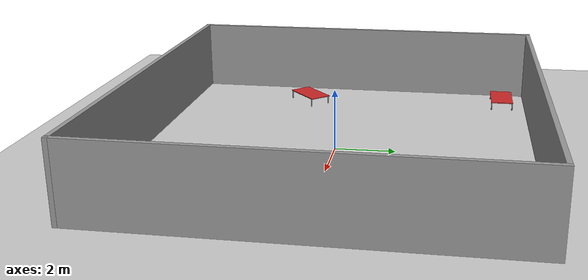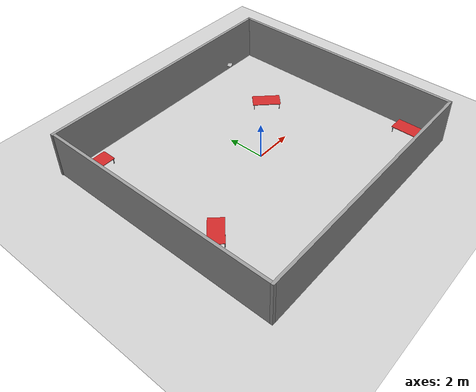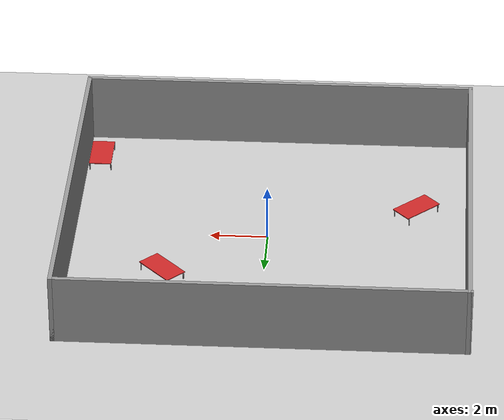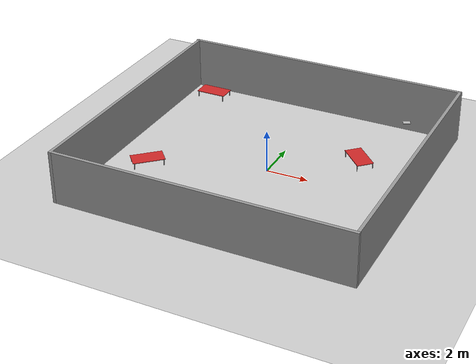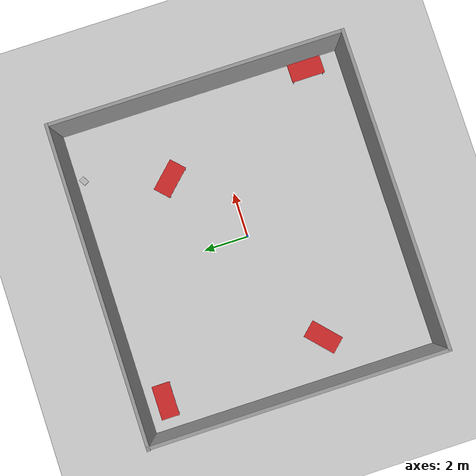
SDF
<sdf version="1.6">
 <world name="Own Room">
  <light name="sun" type="directional">
   <pose>0 0 10 0 -0 0</pose>
   <diffuse>0.8 0.8 0.8 1</diffuse>
   <specular>0.2 0.2 0.2 1</specular>
   <attenuation>
    <range>1000</range>
    <constant>0.9</constant>
    <linear>0.01</linear>
    <quadratic>0.001</quadratic>
   </attenuation>
   <direction>-0.5 0.1 -0.9</direction>
  </light>
  <model name="ground_plane">
   <static>1</static>
   <link name="link">
    <collision name="collision">
     <geometry><plane><normal>0 0 1</normal><size>100 100</size></plane></geometry>
     <surface>
      <contact><collide_bitmask>65535</collide_bitmask></contact>
      <friction><ode><mu>100</mu><mu2>50</mu2></ode></friction>
     </surface>
    </collision>
    <visual name="visual">
     <cast_shadows>0</cast_shadows>
     <geometry><plane><normal>0 0 1</normal><size>100 100</size></plane></geometry>
     <material>
      <script><uri>file://media/materials/scripts/gazebo.material</uri><name>Gazebo/Grey</name></script>
     </material>
    </visual>
   </link>
  </model>
  <gravity>0 0 -9.8</gravity>
  <magnetic_field>6e-06 2.3e-05 -4.2e-05</magnetic_field>
  <atmosphere type="adiabatic"/>
  <physics name="default_physics" default="0" type="ode">
   <max_step_size>0.001</max_step_size>
   <real_time_factor>1</real_time_factor>
   <real_time_update_rate>1000</real_time_update_rate>
  </physics>
  <scene><ambient>0.4 0.4 0.4 1</ambient><background>0.7 0.7 0.7 1</background><shadows>1</shadows></scene>
  <spherical_coordinates>
   <surface_model>EARTH_WGS84</surface_model>
   <latitude_deg>0</latitude_deg>
   <longitude_deg>0</longitude_deg>
   <elevation>0</elevation>
   <heading_deg>0</heading_deg>
  </spherical_coordinates>
  <model name="Room">
   <pose>-0.11793 0.094402 0 0 -0 0</pose>
   <link name="Wall_1">
    <collision name="Wall_1_Collision">
     <geometry><box><size>13 0.15 2.5</size></box></geometry>
     <pose>0 0 1.25 0 -0 0</pose>
    </collision>
    <visual name="Wall_1_Visual">
     <pose>0 0 1.25 0 -0 0</pose>
     <geometry><box><size>13 0.15 2.5</size></box></geometry>
     <material>
      <script><uri>file://media/materials/scripts/gazebo.material</uri><name>Gazebo/Grey</name></script>
      <ambient>0.333333 0.341176 0.32549 1</ambient>
     </material>
     <meta><layer>0</layer></meta>
    </visual>
    <pose>-6.88982 -0 0 0 -0 1.5708</pose>
   </link>
   <link name="Wall_2">
    <collision name="Wall_2_Collision">
     <geometry><box><size>14 0.15 2.5</size></box></geometry>
     <pose>0 0 1.25 0 -0 0</pose>
    </collision>
    <visual name="Wall_2_Visual">
     <pose>0 0 1.25 0 -0 0</pose>
     <geometry><box><size>14 0.15 2.5</size></box></geometry>
     <material>
      <script><uri>file://media/materials/scripts/gazebo.material</uri><name>Gazebo/Grey</name></script>
      <ambient>0.333333 0.341176 0.32549 1</ambient>
     </material>
     <meta><layer>0</layer></meta>
    </visual>
    <pose>-0 6.425 0 0 -0 0</pose>
   </link>
   <link name="Wall_4">
    <collision name="Wall_4_Collision">
     <geometry><box><size>13 0.15 2.5</size></box></geometry>
     <pose>0 0 1.25 0 -0 0</pose>
    </collision>
    <visual name="Wall_4_Visual">
     <pose>0 0 1.25 0 -0 0</pose>
     <geometry><box><size>13 0.15 2.5</size></box></geometry>
     <material>
      <script><uri>file://media/materials/scripts/gazebo.material</uri><name>Gazebo/Grey</name></script>
      <ambient>0.333333 0.341176 0.32549 1</ambient>
     </material>
     <meta><layer>0</layer></meta>
    </visual>
    <pose>6.925 -0 0 0 -0 -1.5708</pose>
   </link>
   <link name="Wall_5">
    <collision name="Wall_5_Collision">
     <geometry><box><size>13.9648 0.15 2.5</size></box></geometry>
     <pose>0 0 1.25 0 -0 0</pose>
    </collision>
    <visual name="Wall_5_Visual">
     <pose>0 0 1.25 0 -0 0</pose>
     <geometry><box><size>13.9648 0.15 2.5</size></box></geometry>
     <material>
      <script><uri>file://media/materials/scripts/gazebo.material</uri><name>Gazebo/Grey</name></script>
      <ambient>0.333333 0.341176 0.32549 1</ambient>
     </material>
     <meta><layer>0</layer></meta>
    </visual>
    <pose>0.017589 -6.425 0 0 -0 3.14159</pose>
   </link>
   <static>1</static>
  </model>
  <model name="table">
   <link name="link">
    <inertial>
     <mass>1</mass>
     <inertia><ixx>1</ixx><ixy>0</ixy><ixz>0</ixz><iyy>1</iyy><iyz>0</iyz><izz>1</izz></inertia>
    </inertial>
    <visual name="front_right_leg">
     <pose>0.68 -0.38 0.15 0 -0 0</pose>
     <geometry><cylinder><radius>0.02</radius><length>0.3</length></cylinder></geometry>
     <material>
      <script><uri>file://media/materials/scripts/gazebo.material</uri><name>Gazebo/Grey</name></script>
      <shader type="pixel"><normal_map>__default__</normal_map></shader>
      <ambient>0.3 0.3 0.3 1</ambient>
      <diffuse>0.7 0.7 0.7 1</diffuse>
      <specular>0.01 0.01 0.01 1</specular>
      <emissive>0 0 0 1</emissive>
     </material>
    </visual>
    <visual name="back_left_leg">
     <pose>-0.68 0.38 0.15 0 -0 0</pose>
     <geometry><cylinder><radius>0.02</radius><length>0.3</length></cylinder></geometry>
     <material>
      <script><uri>file://media/materials/scripts/gazebo.material</uri><name>Gazebo/Grey</name></script>
      <shader type="pixel"><normal_map>__default__</normal_map></shader>
      <ambient>0.3 0.3 0.3 1</ambient>
      <diffuse>0.7 0.7 0.7 1</diffuse>
      <specular>0.01 0.01 0.01 1</specular>
      <emissive>0 0 0 1</emissive>
     </material>
    </visual>
    <visual name="front_left_leg">
     <pose>0.68 0.38 0.15 0 -0 0</pose>
     <geometry><cylinder><radius>0.02</radius><length>0.3</length></cylinder></geometry>
     <material>
      <script><uri>file://media/materials/scripts/gazebo.material</uri><name>Gazebo/Grey</name></script>
      <shader type="pixel"><normal_map>__default__</normal_map></shader>
      <ambient>0.3 0.3 0.3 1</ambient>
      <diffuse>0.7 0.7 0.7 1</diffuse>
      <specular>0.01 0.01 0.01 1</specular>
      <emissive>0 0 0 1</emissive>
     </material>
    </visual>
    <visual name="visual1">
     <pose>0 0 0.3 0 -0 0</pose>
     <geometry><box><size>1.5 0.8 0.03</size></box></geometry>
     <material>
      <script><uri>file://media/materials/scripts/gazebo.material</uri><name>Gazebo/Red</name></script>
      <shader type="vertex"><normal_map>__default__</normal_map></shader>
      <ambient>1 0 0 1</ambient>
      <diffuse>1 0 0 1</diffuse>
      <specular>0.2 0 0 1</specular>
      <emissive>0 0 0 1</emissive>
      <lighting>1</lighting>
     </material>
    </visual>
    <visual name="back_right_leg">
     <pose>-0.68 -0.38 0.15 0 -0 0</pose>
     <geometry><cylinder><radius>0.02</radius><length>0.3</length></cylinder></geometry>
     <material>
      <script><uri>file://media/materials/scripts/gazebo.material</uri><name>Gazebo/Grey</name></script>
      <shader type="pixel"><normal_map>__default__</normal_map></shader>
      <ambient>0.3 0.3 0.3 1</ambient>
      <diffuse>0.7 0.7 0.7 1</diffuse>
      <specular>0.01 0.01 0.01 1</specular>
      <emissive>0 0 0 1</emissive>
     </material>
    </visual>
    <collision name="front_left_leg">
     <pose>0.68 0.38 0.15 0 -0 0</pose>
     <geometry><cylinder><radius>0.02</radius><length>0.3</length></cylinder></geometry>
     <surface>
      <friction>
       <ode><mu>1</mu><mu2>1</mu2><fdir1>0 0 0</fdir1><slip1>0</slip1><slip2>0</slip2></ode>
       <torsional>
        <coefficient>1</coefficient>
        <patch_radius>0</patch_radius>
        <surface_radius>0</surface_radius>
        <use_patch_radius>1</use_patch_radius>
        <ode><slip>0</slip></ode>
       </torsional>
      </friction>
      <bounce><restitution_coefficient>0</restitution_coefficient><threshold>1e+06</threshold></bounce>
      <contact>
       <collide_without_contact>0</collide_without_contact>
       <collide_without_contact_bitmask>1</collide_without_contact_bitmask>
       <collide_bitmask>1</collide_bitmask>
       <ode>
        <soft_cfm>0</soft_cfm>
        <soft_erp>0.2</soft_erp>
        <kp>1e+13</kp>
        <kd>1</kd>
        <max_vel>0.01</max_vel>
        <min_depth>0</min_depth>
       </ode>
       <bullet>
        <split_impulse>1</split_impulse>
        <split_impulse_penetration_threshold>-0.01</split_impulse_penetration_threshold>
        <soft_cfm>0</soft_cfm>
        <soft_erp>0.2</soft_erp>
        <kp>1e+13</kp>
        <kd>1</kd>
       </bullet>
      </contact>
     </surface>
    </collision>
    <collision name="back_right_leg">
     <pose>-0.68 -0.38 0.15 0 -0 0</pose>
     <geometry><cylinder><radius>0.02</radius><length>0.3</length></cylinder></geometry>
     <surface>
      <friction>
       <ode><mu>1</mu><mu2>1</mu2><fdir1>0 0 0</fdir1><slip1>0</slip1><slip2>0</slip2></ode>
       <torsional>
        <coefficient>1</coefficient>
        <patch_radius>0</patch_radius>
        <surface_radius>0</surface_radius>
        <use_patch_radius>1</use_patch_radius>
        <ode><slip>0</slip></ode>
       </torsional>
      </friction>
      <bounce><restitution_coefficient>0</restitution_coefficient><threshold>1e+06</threshold></bounce>
      <contact>
       <collide_without_contact>0</collide_without_contact>
       <collide_without_contact_bitmask>1</collide_without_contact_bitmask>
       <collide_bitmask>1</collide_bitmask>
       <ode>
        <soft_cfm>0</soft_cfm>
        <soft_erp>0.2</soft_erp>
        <kp>1e+13</kp>
        <kd>1</kd>
        <max_vel>0.01</max_vel>
        <min_depth>0</min_depth>
       </ode>
       <bullet>
        <split_impulse>1</split_impulse>
        <split_impulse_penetration_threshold>-0.01</split_impulse_penetration_threshold>
        <soft_cfm>0</soft_cfm>
        <soft_erp>0.2</soft_erp>
        <kp>1e+13</kp>
        <kd>1</kd>
       </bullet>
      </contact>
     </surface>
    </collision>
    <collision name="back_left_leg">
     <pose>-0.68 0.38 0.15 0 -0 0</pose>
     <geometry><cylinder><radius>0.02</radius><length>0.3</length></cylinder></geometry>
     <surface>
      <friction>
       <ode><mu>1</mu><mu2>1</mu2><fdir1>0 0 0</fdir1><slip1>0</slip1><slip2>0</slip2></ode>
       <torsional>
        <coefficient>1</coefficient>
        <patch_radius>0</patch_radius>
        <surface_radius>0</surface_radius>
        <use_patch_radius>1</use_patch_radius>
        <ode><slip>0</slip></ode>
       </torsional>
      </friction>
      <bounce><restitution_coefficient>0</restitution_coefficient><threshold>1e+06</threshold></bounce>
      <contact>
       <collide_without_contact>0</collide_without_contact>
       <collide_without_contact_bitmask>1</collide_without_contact_bitmask>
       <collide_bitmask>1</collide_bitmask>
       <ode>
        <soft_cfm>0</soft_cfm>
        <soft_erp>0.2</soft_erp>
        <kp>1e+13</kp>
        <kd>1</kd>
        <max_vel>0.01</max_vel>
        <min_depth>0</min_depth>
       </ode>
       <bullet>
        <split_impulse>1</split_impulse>
        <split_impulse_penetration_threshold>-0.01</split_impulse_penetration_threshold>
        <soft_cfm>0</soft_cfm>
        <soft_erp>0.2</soft_erp>
        <kp>1e+13</kp>
        <kd>1</kd>
       </bullet>
      </contact>
     </surface>
    </collision>
    <collision name="surface">
     <pose>0 0 0.3 0 -0 0</pose>
     <geometry><box><size>1.5 0.8 0.03</size></box></geometry>
     <surface>
      <friction>
       <ode><mu>0.6</mu><mu2>0.6</mu2><fdir1>0 0 0</fdir1><slip1>0</slip1><slip2>0</slip2></ode>
       <torsional>
        <coefficient>1</coefficient>
        <patch_radius>0</patch_radius>
        <surface_radius>0</surface_radius>
        <use_patch_radius>1</use_patch_radius>
        <ode><slip>0</slip></ode>
       </torsional>
      </friction>
      <bounce><restitution_coefficient>0</restitution_coefficient><threshold>1e+06</threshold></bounce>
      <contact>
       <collide_without_contact>0</collide_without_contact>
       <collide_without_contact_bitmask>1</collide_without_contact_bitmask>
       <collide_bitmask>1</collide_bitmask>
       <ode>
        <soft_cfm>0</soft_cfm>
        <soft_erp>0.2</soft_erp>
        <kp>1e+13</kp>
        <kd>1</kd>
        <max_vel>0.01</max_vel>
        <min_depth>0</min_depth>
       </ode>
       <bullet>
        <split_impulse>1</split_impulse>
        <split_impulse_penetration_threshold>-0.01</split_impulse_penetration_threshold>
        <soft_cfm>0</soft_cfm>
        <soft_erp>0.2</soft_erp>
        <kp>1e+13</kp>
        <kd>1</kd>
       </bullet>
      </contact>
     </surface>
    </collision>
    <collision name="front_right_leg">
     <pose>0.68 -0.38 0.15 0 -0 0</pose>
     <geometry><cylinder><radius>0.02</radius><length>0.3</length></cylinder></geometry>
     <surface>
      <friction>
       <ode><mu>1</mu><mu2>1</mu2><fdir1>0 0 0</fdir1><slip1>0</slip1><slip2>0</slip2></ode>
       <torsional>
        <coefficient>1</coefficient>
        <patch_radius>0</patch_radius>
        <surface_radius>0</surface_radius>
        <use_patch_radius>1</use_patch_radius>
        <ode><slip>0</slip></ode>
       </torsional>
      </friction>
      <bounce><restitution_coefficient>0</restitution_coefficient><threshold>1e+06</threshold></bounce>
      <contact>
       <collide_without_contact>0</collide_without_contact>
       <collide_without_contact_bitmask>1</collide_without_contact_bitmask>
       <collide_bitmask>1</collide_bitmask>
       <ode>
        <soft_cfm>0</soft_cfm>
        <soft_erp>0.2</soft_erp>
        <kp>1e+13</kp>
        <kd>1</kd>
        <max_vel>0.01</max_vel>
        <min_depth>0</min_depth>
       </ode>
       <bullet>
        <split_impulse>1</split_impulse>
        <split_impulse_penetration_threshold>-0.01</split_impulse_penetration_threshold>
        <soft_cfm>0</soft_cfm>
        <soft_erp>0.2</soft_erp>
        <kp>1e+13</kp>
        <kd>1</kd>
       </bullet>
      </contact>
     </surface>
    </collision>
   </link>
   <static>1</static>
   <pose>-5.68589 5.59801 0 0 -0 0</pose>
  </model>
  <model name="table_0">
   <link name="link">
    <inertial>
     <mass>1</mass>
     <inertia><ixx>1</ixx><ixy>0</ixy><ixz>0</ixz><iyy>1</iyy><iyz>0</iyz><izz>1</izz></inertia>
    </inertial>
    <visual name="front_right_leg">
     <pose>0.68 -0.38 0.15 0 -0 0</pose>
     <geometry><cylinder><radius>0.02</radius><length>0.3</length></cylinder></geometry>
     <material>
      <script><uri>file://media/materials/scripts/gazebo.material</uri><name>Gazebo/Grey</name></script>
      <shader type="pixel"><normal_map>__default__</normal_map></shader>
      <ambient>0.3 0.3 0.3 1</ambient>
      <diffuse>0.7 0.7 0.7 1</diffuse>
      <specular>0.01 0.01 0.01 1</specular>
      <emissive>0 0 0 1</emissive>
     </material>
    </visual>
    <visual name="back_left_leg">
     <pose>-0.68 0.38 0.15 0 -0 0</pose>
     <geometry><cylinder><radius>0.02</radius><length>0.3</length></cylinder></geometry>
     <material>
      <script><uri>file://media/materials/scripts/gazebo.material</uri><name>Gazebo/Grey</name></script>
      <shader type="pixel"><normal_map>__default__</normal_map></shader>
      <ambient>0.3 0.3 0.3 1</ambient>
      <diffuse>0.7 0.7 0.7 1</diffuse>
      <specular>0.01 0.01 0.01 1</specular>
      <emissive>0 0 0 1</emissive>
     </material>
    </visual>
    <visual name="front_left_leg">
     <pose>0.68 0.38 0.15 0 -0 0</pose>
     <geometry><cylinder><radius>0.02</radius><length>0.3</length></cylinder></geometry>
     <material>
      <script><uri>file://media/materials/scripts/gazebo.material</uri><name>Gazebo/Grey</name></script>
      <shader type="pixel"><normal_map>__default__</normal_map></shader>
      <ambient>0.3 0.3 0.3 1</ambient>
      <diffuse>0.7 0.7 0.7 1</diffuse>
      <specular>0.01 0.01 0.01 1</specular>
      <emissive>0 0 0 1</emissive>
     </material>
    </visual>
    <visual name="visual1">
     <pose>0 0 0.3 0 -0 0</pose>
     <geometry><box><size>1.5 0.8 0.03</size></box></geometry>
     <material>
      <script><uri>file://media/materials/scripts/gazebo.material</uri><name>Gazebo/Red</name></script>
      <shader type="vertex"><normal_map>__default__</normal_map></shader>
      <ambient>1 0 0 1</ambient>
      <diffuse>1 0 0 1</diffuse>
      <specular>0.2 0 0 1</specular>
      <emissive>0 0 0 1</emissive>
      <lighting>1</lighting>
     </material>
    </visual>
    <visual name="back_right_leg">
     <pose>-0.68 -0.38 0.15 0 -0 0</pose>
     <geometry><cylinder><radius>0.02</radius><length>0.3</length></cylinder></geometry>
     <material>
      <script><uri>file://media/materials/scripts/gazebo.material</uri><name>Gazebo/Grey</name></script>
      <shader type="pixel"><normal_map>__default__</normal_map></shader>
      <ambient>0.3 0.3 0.3 1</ambient>
      <diffuse>0.7 0.7 0.7 1</diffuse>
      <specular>0.01 0.01 0.01 1</specular>
      <emissive>0 0 0 1</emissive>
     </material>
    </visual>
    <collision name="front_left_leg">
     <pose>0.68 0.38 0.15 0 -0 0</pose>
     <geometry><cylinder><radius>0.02</radius><length>0.3</length></cylinder></geometry>
     <surface>
      <friction>
       <ode><mu>1</mu><mu2>1</mu2><fdir1>0 0 0</fdir1><slip1>0</slip1><slip2>0</slip2></ode>
       <torsional>
        <coefficient>1</coefficient>
        <patch_radius>0</patch_radius>
        <surface_radius>0</surface_radius>
        <use_patch_radius>1</use_patch_radius>
        <ode><slip>0</slip></ode>
       </torsional>
      </friction>
      <bounce><restitution_coefficient>0</restitution_coefficient><threshold>1e+06</threshold></bounce>
      <contact>
       <collide_without_contact>0</collide_without_contact>
       <collide_without_contact_bitmask>1</collide_without_contact_bitmask>
       <collide_bitmask>1</collide_bitmask>
       <ode>
        <soft_cfm>0</soft_cfm>
        <soft_erp>0.2</soft_erp>
        <kp>1e+13</kp>
        <kd>1</kd>
        <max_vel>0.01</max_vel>
        <min_depth>0</min_depth>
       </ode>
       <bullet>
        <split_impulse>1</split_impulse>
        <split_impulse_penetration_threshold>-0.01</split_impulse_penetration_threshold>
        <soft_cfm>0</soft_cfm>
        <soft_erp>0.2</soft_erp>
        <kp>1e+13</kp>
        <kd>1</kd>
       </bullet>
      </contact>
     </surface>
    </collision>
    <collision name="back_right_leg">
     <pose>-0.68 -0.38 0.15 0 -0 0</pose>
     <geometry><cylinder><radius>0.02</radius><length>0.3</length></cylinder></geometry>
     <surface>
      <friction>
       <ode><mu>1</mu><mu2>1</mu2><fdir1>0 0 0</fdir1><slip1>0</slip1><slip2>0</slip2></ode>
       <torsional>
        <coefficient>1</coefficient>
        <patch_radius>0</patch_radius>
        <surface_radius>0</surface_radius>
        <use_patch_radius>1</use_patch_radius>
        <ode><slip>0</slip></ode>
       </torsional>
      </friction>
      <bounce><restitution_coefficient>0</restitution_coefficient><threshold>1e+06</threshold></bounce>
      <contact>
       <collide_without_contact>0</collide_without_contact>
       <collide_without_contact_bitmask>1</collide_without_contact_bitmask>
       <collide_bitmask>1</collide_bitmask>
       <ode>
        <soft_cfm>0</soft_cfm>
        <soft_erp>0.2</soft_erp>
        <kp>1e+13</kp>
        <kd>1</kd>
        <max_vel>0.01</max_vel>
        <min_depth>0</min_depth>
       </ode>
       <bullet>
        <split_impulse>1</split_impulse>
        <split_impulse_penetration_threshold>-0.01</split_impulse_penetration_threshold>
        <soft_cfm>0</soft_cfm>
        <soft_erp>0.2</soft_erp>
        <kp>1e+13</kp>
        <kd>1</kd>
       </bullet>
      </contact>
     </surface>
    </collision>
    <collision name="back_left_leg">
     <pose>-0.68 0.38 0.15 0 -0 0</pose>
     <geometry><cylinder><radius>0.02</radius><length>0.3</length></cylinder></geometry>
     <surface>
      <friction>
       <ode><mu>1</mu><mu2>1</mu2><fdir1>0 0 0</fdir1><slip1>0</slip1><slip2>0</slip2></ode>
       <torsional>
        <coefficient>1</coefficient>
        <patch_radius>0</patch_radius>
        <surface_radius>0</surface_radius>
        <use_patch_radius>1</use_patch_radius>
        <ode><slip>0</slip></ode>
       </torsional>
      </friction>
      <bounce><restitution_coefficient>0</restitution_coefficient><threshold>1e+06</threshold></bounce>
      <contact>
       <collide_without_contact>0</collide_without_contact>
       <collide_without_contact_bitmask>1</collide_without_contact_bitmask>
       <collide_bitmask>1</collide_bitmask>
       <ode>
        <soft_cfm>0</soft_cfm>
        <soft_erp>0.2</soft_erp>
        <kp>1e+13</kp>
        <kd>1</kd>
        <max_vel>0.01</max_vel>
        <min_depth>0</min_depth>
       </ode>
       <bullet>
        <split_impulse>1</split_impulse>
        <split_impulse_penetration_threshold>-0.01</split_impulse_penetration_threshold>
        <soft_cfm>0</soft_cfm>
        <soft_erp>0.2</soft_erp>
        <kp>1e+13</kp>
        <kd>1</kd>
       </bullet>
      </contact>
     </surface>
    </collision>
    <collision name="surface">
     <pose>0 0 0.3 0 -0 0</pose>
     <geometry><box><size>1.5 0.8 0.03</size></box></geometry>
     <surface>
      <friction>
       <ode><mu>0.6</mu><mu2>0.6</mu2><fdir1>0 0 0</fdir1><slip1>0</slip1><slip2>0</slip2></ode>
       <torsional>
        <coefficient>1</coefficient>
        <patch_radius>0</patch_radius>
        <surface_radius>0</surface_radius>
        <use_patch_radius>1</use_patch_radius>
        <ode><slip>0</slip></ode>
       </torsional>
      </friction>
      <bounce><restitution_coefficient>0</restitution_coefficient><threshold>1e+06</threshold></bounce>
      <contact>
       <collide_without_contact>0</collide_without_contact>
       <collide_without_contact_bitmask>1</collide_without_contact_bitmask>
       <collide_bitmask>1</collide_bitmask>
       <ode>
        <soft_cfm>0</soft_cfm>
        <soft_erp>0.2</soft_erp>
        <kp>1e+13</kp>
        <kd>1</kd>
        <max_vel>0.01</max_vel>
        <min_depth>0</min_depth>
       </ode>
       <bullet>
        <split_impulse>1</split_impulse>
        <split_impulse_penetration_threshold>-0.01</split_impulse_penetration_threshold>
        <soft_cfm>0</soft_cfm>
        <soft_erp>0.2</soft_erp>
        <kp>1e+13</kp>
        <kd>1</kd>
       </bullet>
      </contact>
     </surface>
    </collision>
    <collision name="front_right_leg">
     <pose>0.68 -0.38 0.15 0 -0 0</pose>
     <geometry><cylinder><radius>0.02</radius><length>0.3</length></cylinder></geometry>
     <surface>
      <friction>
       <ode><mu>1</mu><mu2>1</mu2><fdir1>0 0 0</fdir1><slip1>0</slip1><slip2>0</slip2></ode>
       <torsional>
        <coefficient>1</coefficient>
        <patch_radius>0</patch_radius>
        <surface_radius>0</surface_radius>
        <use_patch_radius>1</use_patch_radius>
        <ode><slip>0</slip></ode>
       </torsional>
      </friction>
      <bounce><restitution_coefficient>0</restitution_coefficient><threshold>1e+06</threshold></bounce>
      <contact>
       <collide_without_contact>0</collide_without_contact>
       <collide_without_contact_bitmask>1</collide_without_contact_bitmask>
       <collide_bitmask>1</collide_bitmask>
       <ode>
        <soft_cfm>0</soft_cfm>
        <soft_erp>0.2</soft_erp>
        <kp>1e+13</kp>
        <kd>1</kd>
        <max_vel>0.01</max_vel>
        <min_depth>0</min_depth>
       </ode>
       <bullet>
        <split_impulse>1</split_impulse>
        <split_impulse_penetration_threshold>-0.01</split_impulse_penetration_threshold>
        <soft_cfm>0</soft_cfm>
        <soft_erp>0.2</soft_erp>
        <kp>1e+13</kp>
        <kd>1</kd>
       </bullet>
      </contact>
     </surface>
    </collision>
   </link>
   <static>1</static>
   <pose>6.26711 -4.72705 0 0 0 -1.56938</pose>
  </model>
  <model name="table_1">
   <link name="link">
    <inertial>
     <mass>1</mass>
     <inertia><ixx>1</ixx><ixy>0</ixy><ixz>0</ixz><iyy>1</iyy><iyz>0</iyz><izz>1</izz></inertia>
    </inertial>
    <visual name="front_right_leg">
     <pose>0.68 -0.38 0.15 0 -0 0</pose>
     <geometry><cylinder><radius>0.02</radius><length>0.3</length></cylinder></geometry>
     <material>
      <script><uri>file://media/materials/scripts/gazebo.material</uri><name>Gazebo/Grey</name></script>
      <shader type="pixel"><normal_map>__default__</normal_map></shader>
      <ambient>0.3 0.3 0.3 1</ambient>
      <diffuse>0.7 0.7 0.7 1</diffuse>
      <specular>0.01 0.01 0.01 1</specular>
      <emissive>0 0 0 1</emissive>
     </material>
    </visual>
    <visual name="back_left_leg">
     <pose>-0.68 0.38 0.15 0 -0 0</pose>
     <geometry><cylinder><radius>0.02</radius><length>0.3</length></cylinder></geometry>
     <material>
      <script><uri>file://media/materials/scripts/gazebo.material</uri><name>Gazebo/Grey</name></script>
      <shader type="pixel"><normal_map>__default__</normal_map></shader>
      <ambient>0.3 0.3 0.3 1</ambient>
      <diffuse>0.7 0.7 0.7 1</diffuse>
      <specular>0.01 0.01 0.01 1</specular>
      <emissive>0 0 0 1</emissive>
     </material>
    </visual>
    <visual name="front_left_leg">
     <pose>0.68 0.38 0.15 0 -0 0</pose>
     <geometry><cylinder><radius>0.02</radius><length>0.3</length></cylinder></geometry>
     <material>
      <script><uri>file://media/materials/scripts/gazebo.material</uri><name>Gazebo/Grey</name></script>
      <shader type="pixel"><normal_map>__default__</normal_map></shader>
      <ambient>0.3 0.3 0.3 1</ambient>
      <diffuse>0.7 0.7 0.7 1</diffuse>
      <specular>0.01 0.01 0.01 1</specular>
      <emissive>0 0 0 1</emissive>
     </material>
    </visual>
    <visual name="visual1">
     <pose>0 0 0.3 0 -0 0</pose>
     <geometry><box><size>1.5 0.8 0.03</size></box></geometry>
     <material>
      <script><uri>file://media/materials/scripts/gazebo.material</uri><name>Gazebo/Red</name></script>
      <shader type="vertex"><normal_map>__default__</normal_map></shader>
      <ambient>1 0 0 1</ambient>
      <diffuse>1 0 0 1</diffuse>
      <specular>0.2 0 0 1</specular>
      <emissive>0 0 0 1</emissive>
      <lighting>1</lighting>
     </material>
    </visual>
    <visual name="back_right_leg">
     <pose>-0.68 -0.38 0.15 0 -0 0</pose>
     <geometry><cylinder><radius>0.02</radius><length>0.3</length></cylinder></geometry>
     <material>
      <script><uri>file://media/materials/scripts/gazebo.material</uri><name>Gazebo/Grey</name></script>
      <shader type="pixel"><normal_map>__default__</normal_map></shader>
      <ambient>0.3 0.3 0.3 1</ambient>
      <diffuse>0.7 0.7 0.7 1</diffuse>
      <specular>0.01 0.01 0.01 1</specular>
      <emissive>0 0 0 1</emissive>
     </material>
    </visual>
    <collision name="front_left_leg">
     <pose>0.68 0.38 0.15 0 -0 0</pose>
     <geometry><cylinder><radius>0.02</radius><length>0.3</length></cylinder></geometry>
     <surface>
      <friction>
       <ode><mu>1</mu><mu2>1</mu2><fdir1>0 0 0</fdir1><slip1>0</slip1><slip2>0</slip2></ode>
       <torsional>
        <coefficient>1</coefficient>
        <patch_radius>0</patch_radius>
        <surface_radius>0</surface_radius>
        <use_patch_radius>1</use_patch_radius>
        <ode><slip>0</slip></ode>
       </torsional>
      </friction>
      <bounce><restitution_coefficient>0</restitution_coefficient><threshold>1e+06</threshold></bounce>
      <contact>
       <collide_without_contact>0</collide_without_contact>
       <collide_without_contact_bitmask>1</collide_without_contact_bitmask>
       <collide_bitmask>1</collide_bitmask>
       <ode>
        <soft_cfm>0</soft_cfm>
        <soft_erp>0.2</soft_erp>
        <kp>1e+13</kp>
        <kd>1</kd>
        <max_vel>0.01</max_vel>
        <min_depth>0</min_depth>
       </ode>
       <bullet>
        <split_impulse>1</split_impulse>
        <split_impulse_penetration_threshold>-0.01</split_impulse_penetration_threshold>
        <soft_cfm>0</soft_cfm>
        <soft_erp>0.2</soft_erp>
        <kp>1e+13</kp>
        <kd>1</kd>
       </bullet>
      </contact>
     </surface>
    </collision>
    <collision name="back_right_leg">
     <pose>-0.68 -0.38 0.15 0 -0 0</pose>
     <geometry><cylinder><radius>0.02</radius><length>0.3</length></cylinder></geometry>
     <surface>
      <friction>
       <ode><mu>1</mu><mu2>1</mu2><fdir1>0 0 0</fdir1><slip1>0</slip1><slip2>0</slip2></ode>
       <torsional>
        <coefficient>1</coefficient>
        <patch_radius>0</patch_radius>
        <surface_radius>0</surface_radius>
        <use_patch_radius>1</use_patch_radius>
        <ode><slip>0</slip></ode>
       </torsional>
      </friction>
      <bounce><restitution_coefficient>0</restitution_coefficient><threshold>1e+06</threshold></bounce>
      <contact>
       <collide_without_contact>0</collide_without_contact>
       <collide_without_contact_bitmask>1</collide_without_contact_bitmask>
       <collide_bitmask>1</collide_bitmask>
       <ode>
        <soft_cfm>0</soft_cfm>
        <soft_erp>0.2</soft_erp>
        <kp>1e+13</kp>
        <kd>1</kd>
        <max_vel>0.01</max_vel>
        <min_depth>0</min_depth>
       </ode>
       <bullet>
        <split_impulse>1</split_impulse>
        <split_impulse_penetration_threshold>-0.01</split_impulse_penetration_threshold>
        <soft_cfm>0</soft_cfm>
        <soft_erp>0.2</soft_erp>
        <kp>1e+13</kp>
        <kd>1</kd>
       </bullet>
      </contact>
     </surface>
    </collision>
    <collision name="back_left_leg">
     <pose>-0.68 0.38 0.15 0 -0 0</pose>
     <geometry><cylinder><radius>0.02</radius><length>0.3</length></cylinder></geometry>
     <surface>
      <friction>
       <ode><mu>1</mu><mu2>1</mu2><fdir1>0 0 0</fdir1><slip1>0</slip1><slip2>0</slip2></ode>
       <torsional>
        <coefficient>1</coefficient>
        <patch_radius>0</patch_radius>
        <surface_radius>0</surface_radius>
        <use_patch_radius>1</use_patch_radius>
        <ode><slip>0</slip></ode>
       </torsional>
      </friction>
      <bounce><restitution_coefficient>0</restitution_coefficient><threshold>1e+06</threshold></bounce>
      <contact>
       <collide_without_contact>0</collide_without_contact>
       <collide_without_contact_bitmask>1</collide_without_contact_bitmask>
       <collide_bitmask>1</collide_bitmask>
       <ode>
        <soft_cfm>0</soft_cfm>
        <soft_erp>0.2</soft_erp>
        <kp>1e+13</kp>
        <kd>1</kd>
        <max_vel>0.01</max_vel>
        <min_depth>0</min_depth>
       </ode>
       <bullet>
        <split_impulse>1</split_impulse>
        <split_impulse_penetration_threshold>-0.01</split_impulse_penetration_threshold>
        <soft_cfm>0</soft_cfm>
        <soft_erp>0.2</soft_erp>
        <kp>1e+13</kp>
        <kd>1</kd>
       </bullet>
      </contact>
     </surface>
    </collision>
    <collision name="surface">
     <pose>0 0 0.3 0 -0 0</pose>
     <geometry><box><size>1.5 0.8 0.03</size></box></geometry>
     <surface>
      <friction>
       <ode><mu>0.6</mu><mu2>0.6</mu2><fdir1>0 0 0</fdir1><slip1>0</slip1><slip2>0</slip2></ode>
       <torsional>
        <coefficient>1</coefficient>
        <patch_radius>0</patch_radius>
        <surface_radius>0</surface_radius>
        <use_patch_radius>1</use_patch_radius>
        <ode><slip>0</slip></ode>
       </torsional>
      </friction>
      <bounce><restitution_coefficient>0</restitution_coefficient><threshold>1e+06</threshold></bounce>
      <contact>
       <collide_without_contact>0</collide_without_contact>
       <collide_without_contact_bitmask>1</collide_without_contact_bitmask>
       <collide_bitmask>1</collide_bitmask>
       <ode>
        <soft_cfm>0</soft_cfm>
        <soft_erp>0.2</soft_erp>
        <kp>1e+13</kp>
        <kd>1</kd>
        <max_vel>0.01</max_vel>
        <min_depth>0</min_depth>
       </ode>
       <bullet>
        <split_impulse>1</split_impulse>
        <split_impulse_penetration_threshold>-0.01</split_impulse_penetration_threshold>
        <soft_cfm>0</soft_cfm>
        <soft_erp>0.2</soft_erp>
        <kp>1e+13</kp>
        <kd>1</kd>
       </bullet>
      </contact>
     </surface>
    </collision>
    <collision name="front_right_leg">
     <pose>0.68 -0.38 0.15 0 -0 0</pose>
     <geometry><cylinder><radius>0.02</radius><length>0.3</length></cylinder></geometry>
     <surface>
      <friction>
       <ode><mu>1</mu><mu2>1</mu2><fdir1>0 0 0</fdir1><slip1>0</slip1><slip2>0</slip2></ode>
       <torsional>
        <coefficient>1</coefficient>
        <patch_radius>0</patch_radius>
        <surface_radius>0</surface_radius>
        <use_patch_radius>1</use_patch_radius>
        <ode><slip>0</slip></ode>
       </torsional>
      </friction>
      <bounce><restitution_coefficient>0</restitution_coefficient><threshold>1e+06</threshold></bounce>
      <contact>
       <collide_without_contact>0</collide_without_contact>
       <collide_without_contact_bitmask>1</collide_without_contact_bitmask>
       <collide_bitmask>1</collide_bitmask>
       <ode>
        <soft_cfm>0</soft_cfm>
        <soft_erp>0.2</soft_erp>
        <kp>1e+13</kp>
        <kd>1</kd>
        <max_vel>0.01</max_vel>
        <min_depth>0</min_depth>
       </ode>
       <bullet>
        <split_impulse>1</split_impulse>
        <split_impulse_penetration_threshold>-0.01</split_impulse_penetration_threshold>
        <soft_cfm>0</soft_cfm>
        <soft_erp>0.2</soft_erp>
        <kp>1e+13</kp>
        <kd>1</kd>
       </bullet>
      </contact>
     </surface>
    </collision>
   </link>
   <static>1</static>
   <pose>3.47543 2.47814 0 0 0 -0.802588</pose>
  </model>
  <model name="table_2">
   <link name="link">
    <inertial>
     <mass>1</mass>
     <inertia><ixx>1</ixx><ixy>0</ixy><ixz>0</ixz><iyy>1</iyy><iyz>0</iyz><izz>1</izz></inertia>
    </inertial>
    <visual name="front_right_leg">
     <pose>0.68 -0.38 0.15 0 -0 0</pose>
     <geometry><cylinder><radius>0.02</radius><length>0.3</length></cylinder></geometry>
     <material>
      <script><uri>file://media/materials/scripts/gazebo.material</uri><name>Gazebo/Grey</name></script>
      <shader type="pixel"><normal_map>__default__</normal_map></shader>
      <ambient>0.3 0.3 0.3 1</ambient>
      <diffuse>0.7 0.7 0.7 1</diffuse>
      <specular>0.01 0.01 0.01 1</specular>
      <emissive>0 0 0 1</emissive>
     </material>
    </visual>
    <visual name="back_left_leg">
     <pose>-0.68 0.38 0.15 0 -0 0</pose>
     <geometry><cylinder><radius>0.02</radius><length>0.3</length></cylinder></geometry>
     <material>
      <script><uri>file://media/materials/scripts/gazebo.material</uri><name>Gazebo/Grey</name></script>
      <shader type="pixel"><normal_map>__default__</normal_map></shader>
      <ambient>0.3 0.3 0.3 1</ambient>
      <diffuse>0.7 0.7 0.7 1</diffuse>
      <specular>0.01 0.01 0.01 1</specular>
      <emissive>0 0 0 1</emissive>
     </material>
    </visual>
    <visual name="front_left_leg">
     <pose>0.68 0.38 0.15 0 -0 0</pose>
     <geometry><cylinder><radius>0.02</radius><length>0.3</length></cylinder></geometry>
     <material>
      <script><uri>file://media/materials/scripts/gazebo.material</uri><name>Gazebo/Grey</name></script>
      <shader type="pixel"><normal_map>__default__</normal_map></shader>
      <ambient>0.3 0.3 0.3 1</ambient>
      <diffuse>0.7 0.7 0.7 1</diffuse>
      <specular>0.01 0.01 0.01 1</specular>
      <emissive>0 0 0 1</emissive>
     </material>
    </visual>
    <visual name="visual1">
     <pose>0 0 0.3 0 -0 0</pose>
     <geometry><box><size>1.5 0.8 0.03</size></box></geometry>
     <material>
      <script><uri>file://media/materials/scripts/gazebo.material</uri><name>Gazebo/Red</name></script>
      <shader type="vertex"><normal_map>__default__</normal_map></shader>
      <ambient>1 0 0 1</ambient>
      <diffuse>1 0 0 1</diffuse>
      <specular>0.2 0 0 1</specular>
      <emissive>0 0 0 1</emissive>
      <lighting>1</lighting>
     </material>
    </visual>
    <visual name="back_right_leg">
     <pose>-0.68 -0.38 0.15 0 -0 0</pose>
     <geometry><cylinder><radius>0.02</radius><length>0.3</length></cylinder></geometry>
     <material>
      <script><uri>file://media/materials/scripts/gazebo.material</uri><name>Gazebo/Grey</name></script>
      <shader type="pixel"><normal_map>__default__</normal_map></shader>
      <ambient>0.3 0.3 0.3 1</ambient>
      <diffuse>0.7 0.7 0.7 1</diffuse>
      <specular>0.01 0.01 0.01 1</specular>
      <emissive>0 0 0 1</emissive>
     </material>
    </visual>
    <collision name="front_left_leg">
     <pose>0.68 0.38 0.15 0 -0 0</pose>
     <geometry><cylinder><radius>0.02</radius><length>0.3</length></cylinder></geometry>
     <surface>
      <friction>
       <ode><mu>1</mu><mu2>1</mu2><fdir1>0 0 0</fdir1><slip1>0</slip1><slip2>0</slip2></ode>
       <torsional>
        <coefficient>1</coefficient>
        <patch_radius>0</patch_radius>
        <surface_radius>0</surface_radius>
        <use_patch_radius>1</use_patch_radius>
        <ode><slip>0</slip></ode>
       </torsional>
      </friction>
      <bounce><restitution_coefficient>0</restitution_coefficient><threshold>1e+06</threshold></bounce>
      <contact>
       <collide_without_contact>0</collide_without_contact>
       <collide_without_contact_bitmask>1</collide_without_contact_bitmask>
       <collide_bitmask>1</collide_bitmask>
       <ode>
        <soft_cfm>0</soft_cfm>
        <soft_erp>0.2</soft_erp>
        <kp>1e+13</kp>
        <kd>1</kd>
        <max_vel>0.01</max_vel>
        <min_depth>0</min_depth>
       </ode>
       <bullet>
        <split_impulse>1</split_impulse>
        <split_impulse_penetration_threshold>-0.01</split_impulse_penetration_threshold>
        <soft_cfm>0</soft_cfm>
        <soft_erp>0.2</soft_erp>
        <kp>1e+13</kp>
        <kd>1</kd>
       </bullet>
      </contact>
     </surface>
    </collision>
    <collision name="back_right_leg">
     <pose>-0.68 -0.38 0.15 0 -0 0</pose>
     <geometry><cylinder><radius>0.02</radius><length>0.3</length></cylinder></geometry>
     <surface>
      <friction>
       <ode><mu>1</mu><mu2>1</mu2><fdir1>0 0 0</fdir1><slip1>0</slip1><slip2>0</slip2></ode>
       <torsional>
        <coefficient>1</coefficient>
        <patch_radius>0</patch_radius>
        <surface_radius>0</surface_radius>
        <use_patch_radius>1</use_patch_radius>
        <ode><slip>0</slip></ode>
       </torsional>
      </friction>
      <bounce><restitution_coefficient>0</restitution_coefficient><threshold>1e+06</threshold></bounce>
      <contact>
       <collide_without_contact>0</collide_without_contact>
       <collide_without_contact_bitmask>1</collide_without_contact_bitmask>
       <collide_bitmask>1</collide_bitmask>
       <ode>
        <soft_cfm>0</soft_cfm>
        <soft_erp>0.2</soft_erp>
        <kp>1e+13</kp>
        <kd>1</kd>
        <max_vel>0.01</max_vel>
        <min_depth>0</min_depth>
       </ode>
       <bullet>
        <split_impulse>1</split_impulse>
        <split_impulse_penetration_threshold>-0.01</split_impulse_penetration_threshold>
        <soft_cfm>0</soft_cfm>
        <soft_erp>0.2</soft_erp>
        <kp>1e+13</kp>
        <kd>1</kd>
       </bullet>
      </contact>
     </surface>
    </collision>
    <collision name="back_left_leg">
     <pose>-0.68 0.38 0.15 0 -0 0</pose>
     <geometry><cylinder><radius>0.02</radius><length>0.3</length></cylinder></geometry>
     <surface>
      <friction>
       <ode><mu>1</mu><mu2>1</mu2><fdir1>0 0 0</fdir1><slip1>0</slip1><slip2>0</slip2></ode>
       <torsional>
        <coefficient>1</coefficient>
        <patch_radius>0</patch_radius>
        <surface_radius>0</surface_radius>
        <use_patch_radius>1</use_patch_radius>
        <ode><slip>0</slip></ode>
       </torsional>
      </friction>
      <bounce><restitution_coefficient>0</restitution_coefficient><threshold>1e+06</threshold></bounce>
      <contact>
       <collide_without_contact>0</collide_without_contact>
       <collide_without_contact_bitmask>1</collide_without_contact_bitmask>
       <collide_bitmask>1</collide_bitmask>
       <ode>
        <soft_cfm>0</soft_cfm>
        <soft_erp>0.2</soft_erp>
        <kp>1e+13</kp>
        <kd>1</kd>
        <max_vel>0.01</max_vel>
        <min_depth>0</min_depth>
       </ode>
       <bullet>
        <split_impulse>1</split_impulse>
        <split_impulse_penetration_threshold>-0.01</split_impulse_penetration_threshold>
        <soft_cfm>0</soft_cfm>
        <soft_erp>0.2</soft_erp>
        <kp>1e+13</kp>
        <kd>1</kd>
       </bullet>
      </contact>
     </surface>
    </collision>
    <collision name="surface">
     <pose>0 0 0.3 0 -0 0</pose>
     <geometry><box><size>1.5 0.8 0.03</size></box></geometry>
     <surface>
      <friction>
       <ode><mu>0.6</mu><mu2>0.6</mu2><fdir1>0 0 0</fdir1><slip1>0</slip1><slip2>0</slip2></ode>
       <torsional>
        <coefficient>1</coefficient>
        <patch_radius>0</patch_radius>
        <surface_radius>0</surface_radius>
        <use_patch_radius>1</use_patch_radius>
        <ode><slip>0</slip></ode>
       </torsional>
      </friction>
      <bounce><restitution_coefficient>0</restitution_coefficient><threshold>1e+06</threshold></bounce>
      <contact>
       <collide_without_contact>0</collide_without_contact>
       <collide_without_contact_bitmask>1</collide_without_contact_bitmask>
       <collide_bitmask>1</collide_bitmask>
       <ode>
        <soft_cfm>0</soft_cfm>
        <soft_erp>0.2</soft_erp>
        <kp>1e+13</kp>
        <kd>1</kd>
        <max_vel>0.01</max_vel>
        <min_depth>0</min_depth>
       </ode>
       <bullet>
        <split_impulse>1</split_impulse>
        <split_impulse_penetration_threshold>-0.01</split_impulse_penetration_threshold>
        <soft_cfm>0</soft_cfm>
        <soft_erp>0.2</soft_erp>
        <kp>1e+13</kp>
        <kd>1</kd>
       </bullet>
      </contact>
     </surface>
    </collision>
    <collision name="front_right_leg">
     <pose>0.68 -0.38 0.15 0 -0 0</pose>
     <geometry><cylinder><radius>0.02</radius><length>0.3</length></cylinder></geometry>
     <surface>
      <friction>
       <ode><mu>1</mu><mu2>1</mu2><fdir1>0 0 0</fdir1><slip1>0</slip1><slip2>0</slip2></ode>
       <torsional>
        <coefficient>1</coefficient>
        <patch_radius>0</patch_radius>
        <surface_radius>0</surface_radius>
        <use_patch_radius>1</use_patch_radius>
        <ode><slip>0</slip></ode>
       </torsional>
      </friction>
      <bounce><restitution_coefficient>0</restitution_coefficient><threshold>1e+06</threshold></bounce>
      <contact>
       <collide_without_contact>0</collide_without_contact>
       <collide_without_contact_bitmask>1</collide_without_contact_bitmask>
       <collide_bitmask>1</collide_bitmask>
       <ode>
        <soft_cfm>0</soft_cfm>
        <soft_erp>0.2</soft_erp>
        <kp>1e+13</kp>
        <kd>1</kd>
        <max_vel>0.01</max_vel>
        <min_depth>0</min_depth>
       </ode>
       <bullet>
        <split_impulse>1</split_impulse>
        <split_impulse_penetration_threshold>-0.01</split_impulse_penetration_threshold>
        <soft_cfm>0</soft_cfm>
        <soft_erp>0.2</soft_erp>
        <kp>1e+13</kp>
        <kd>1</kd>
       </bullet>
      </contact>
     </surface>
    </collision>
   </link>
   <static>1</static>
   <pose>-5.17868 -1.76031 0 0 -0 0.74411</pose>
  </model>
  <model name="newspaper_2">
   <link name="link_0">
    <visual name="visual">
     <geometry><box><size>0.35 0.25 0.02</size></box></geometry>
     <material>
      <script>
       <uri>model://newspaper_2/materials/scripts</uri>
       <uri>model://newspaper_2/materials/textures</uri>
       <name>newspaper_2</name>
      </script>
     </material>
    </visual>
    <collision name="collision"><geometry><box><size>0.35 0.25 0.02</size></box></geometry></collision>
   </link>
   <static>1</static>
   <pose>4.485 6.05087 0.594518 0 -0 0.504059</pose>
  </model>
 </world>
</sdf>
